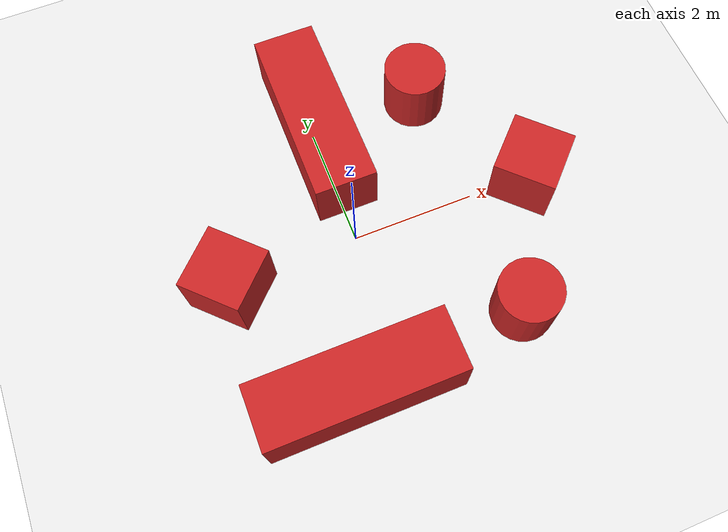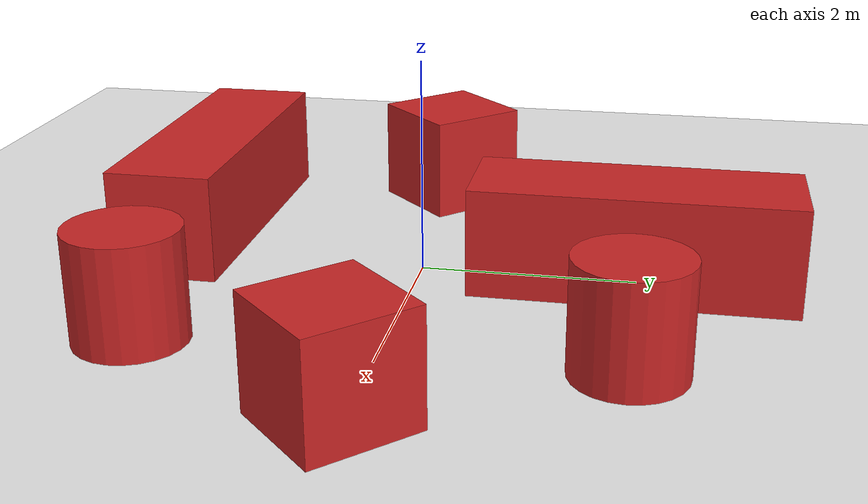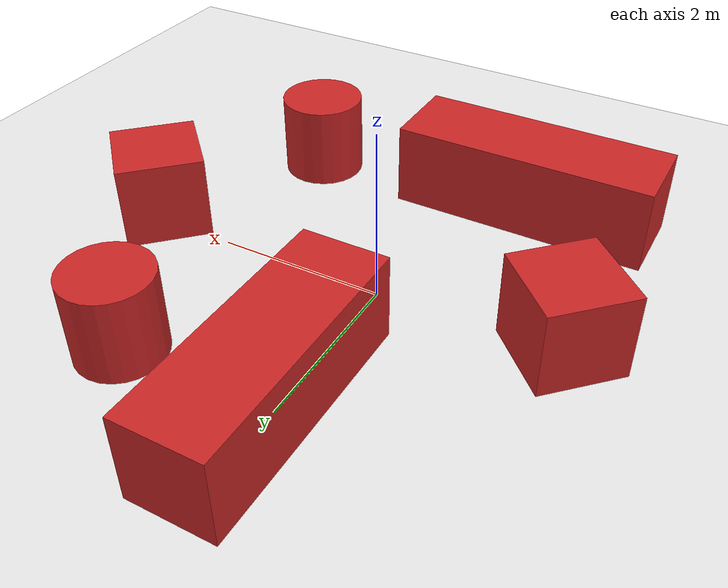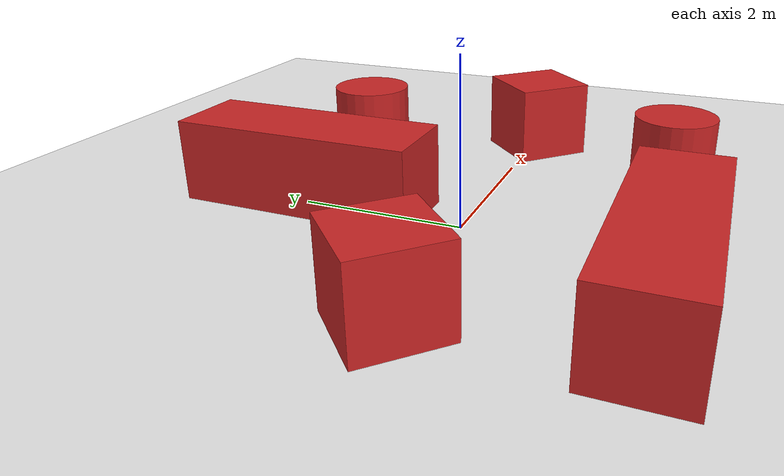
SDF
<sdf version="1.6">
 <world name="default">
  <light name="sun" type="directional">
   <pose>0 0 10 0 -0 0</pose>
   <diffuse>0.8 0.8 0.8 1</diffuse>
   <specular>0.1 0.1 0.1 1</specular>
   <attenuation>
    <range>1000</range>
    <constant>0.9</constant>
    <linear>0.01</linear>
    <quadratic>0.001</quadratic>
   </attenuation>
   <direction>-0.5 0.5 -1</direction>
  </light>
  <model name="ground_plane">
   <static>1</static>
   <link name="link">
    <collision name="collision">
     <geometry><plane><normal>0 0 1</normal><size>10 10</size></plane></geometry>
     <surface><friction><ode><mu>100</mu><mu2>50</mu2></ode></friction></surface>
    </collision>
    <visual name="visual">
     <cast_shadows>0</cast_shadows>
     <geometry><plane><normal>0 0 1</normal><size>10 10</size></plane></geometry>
     <material>
      <script><uri>file://media/materials/scripts/gazebo.material</uri><name>Gazebo/White</name></script>
     </material>
    </visual>
   </link>
  </model>
  <gravity>0 0 -9.8</gravity>
  <magnetic_field>6e-06 2.3e-05 -4.2e-05</magnetic_field>
  <atmosphere type="adiabatic"/>
  <physics name="default_physics" default="0" type="ode">
   <max_step_size>0.001</max_step_size>
   <real_time_factor>1</real_time_factor>
   <real_time_update_rate>1000</real_time_update_rate>
  </physics>
  <scene><ambient>0.4 0.4 0.4 1</ambient><background>0.7 0.7 0.7 1</background><shadows>1</shadows></scene>
  <spherical_coordinates>
   <surface_model>EARTH_WGS84</surface_model>
   <latitude_deg>0</latitude_deg>
   <longitude_deg>0</longitude_deg>
   <elevation>0</elevation>
   <heading_deg>0</heading_deg>
  </spherical_coordinates>
  <model name="unit_box_0">
   <static>1</static>
   <pose>-0.856451 -2.31594 0.499799 0 -0.000131 0</pose>
   <link name="link">
    <inertial>
     <mass>1</mass>
     <inertia>
      <ixx>0.166667</ixx>
      <ixy>0</ixy>
      <ixz>0</ixz>
      <iyy>0.166667</iyy>
      <iyz>0</iyz>
      <izz>0.166667</izz>
     </inertia>
    </inertial>
    <collision name="collision"><geometry><box><size>3.07935 1 1</size></box></geometry></collision>
    <visual name="visual">
     <geometry><box><size>3.07935 1 1</size></box></geometry>
     <material>
      <script><name>Gazebo/Red</name><uri>file://media/materials/scripts/gazebo.material</uri></script>
     </material>
    </visual>
   </link>
  </model>
  <model name="unit_cylinder_0">
   <static>1</static>
   <pose>1.93601 -2.08341 0.499993 -3e-06 3e-06 0</pose>
   <link name="link">
    <inertial>
     <mass>1</mass>
     <inertia><ixx>0.145833</ixx><ixy>0</ixy><ixz>0</ixz><iyy>0.145833</iyy><iyz>0</iyz><izz>0.125</izz></inertia>
    </inertial>
    <collision name="collision">
     <geometry><cylinder><radius>0.5</radius><length>1</length></cylinder></geometry>
    </collision>
    <visual name="visual">
     <geometry><cylinder><radius>0.5</radius><length>1</length></cylinder></geometry>
     <material>
      <script><name>Gazebo/Red</name><uri>file://media/materials/scripts/gazebo.material</uri></script>
     </material>
    </visual>
   </link>
  </model>
  <model name="unit_cylinder_1">
   <static>1</static>
   <pose>1.84487 2.02617 0.499998 3e-06 -3e-06 0</pose>
   <link name="link">
    <inertial>
     <mass>1</mass>
     <inertia><ixx>0.145833</ixx><ixy>0</ixy><ixz>0</ixz><iyy>0.145833</iyy><iyz>0</iyz><izz>0.125</izz></inertia>
    </inertial>
    <collision name="collision">
     <geometry><cylinder><radius>0.5</radius><length>1</length></cylinder></geometry>
    </collision>
    <visual name="visual">
     <geometry><cylinder><radius>0.5</radius><length>1</length></cylinder></geometry>
     <material>
      <script><name>Gazebo/Red</name><uri>file://media/materials/scripts/gazebo.material</uri></script>
     </material>
    </visual>
   </link>
  </model>
  <model name="unit_box_1">
   <static>1</static>
   <pose>2.98076 -0.06719 0.5 0 -0 0.7854</pose>
   <link name="link">
    <inertial>
     <mass>1</mass>
     <inertia>
      <ixx>0.166667</ixx>
      <ixy>0</ixy>
      <ixz>0</ixz>
      <iyy>0.166667</iyy>
      <iyz>0</iyz>
      <izz>0.166667</izz>
     </inertia>
    </inertial>
    <collision name="collision"><geometry><box><size>1 1 1</size></box></geometry></collision>
    <visual name="visual">
     <geometry><box><size>1 1 1</size></box></geometry>
     <material>
      <script><name>Gazebo/Red</name><uri>file://media/materials/scripts/gazebo.material</uri></script>
     </material>
    </visual>
   </link>
  </model>
  <model name="unit_box_2">
   <static>1</static>
   <pose>0.074298 1.97665 0.499996 -1e-06 -5e-06 1e-06</pose>
   <link name="link">
    <inertial>
     <mass>1</mass>
     <inertia>
      <ixx>0.166667</ixx>
      <ixy>0</ixy>
      <ixz>0</ixz>
      <iyy>0.166667</iyy>
      <iyz>0</iyz>
      <izz>0.166667</izz>
     </inertia>
    </inertial>
    <collision name="collision"><geometry><box><size>1 2.94625 1</size></box></geometry></collision>
    <visual name="visual">
     <geometry><box><size>1 2.94625 1</size></box></geometry>
     <material>
      <script><name>Gazebo/Red</name><uri>file://media/materials/scripts/gazebo.material</uri></script>
     </material>
    </visual>
   </link>
  </model>
  <model name="unit_box_3">
   <static>1</static>
   <pose>-2.08234 -0.095289 0.5 0 -0 0.7854</pose>
   <link name="link">
    <inertial>
     <mass>1</mass>
     <inertia>
      <ixx>0.166667</ixx>
      <ixy>0</ixy>
      <ixz>0</ixz>
      <iyy>0.166667</iyy>
      <iyz>0</iyz>
      <izz>0.166667</izz>
     </inertia>
    </inertial>
    <collision name="collision"><geometry><box><size>1 1 1</size></box></geometry></collision>
    <visual name="visual">
     <geometry><box><size>1 1 1</size></box></geometry>
     <material>
      <script><name>Gazebo/Red</name><uri>file://media/materials/scripts/gazebo.material</uri></script>
     </material>
    </visual>
   </link>
  </model>
 </world>
</sdf>
